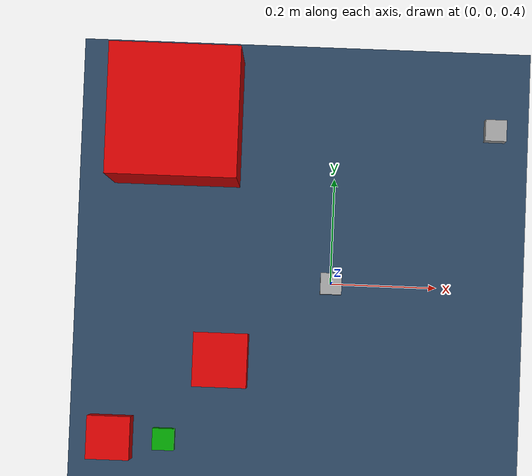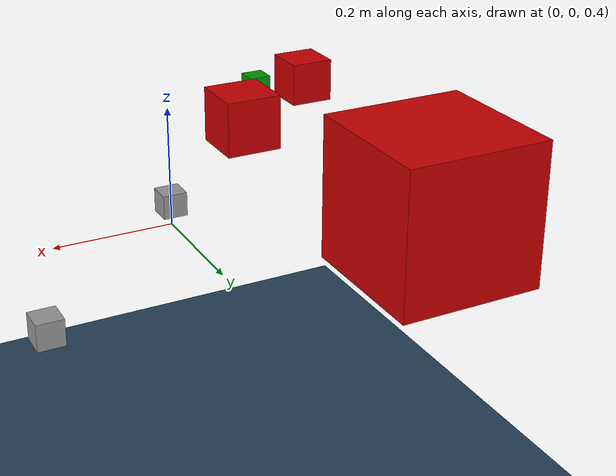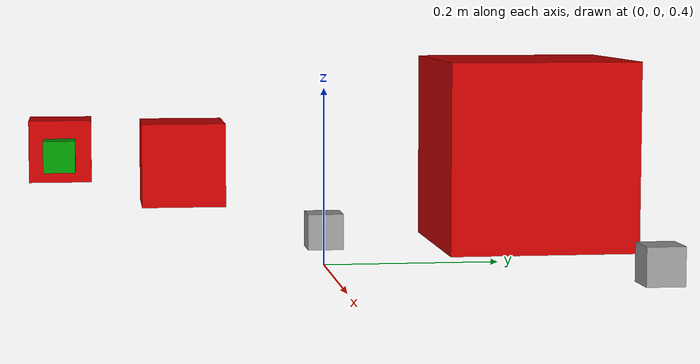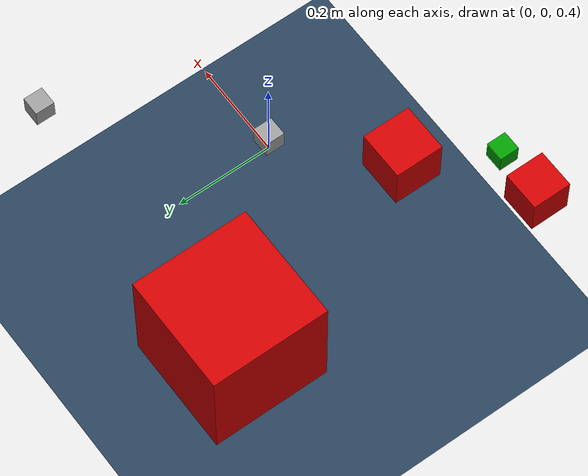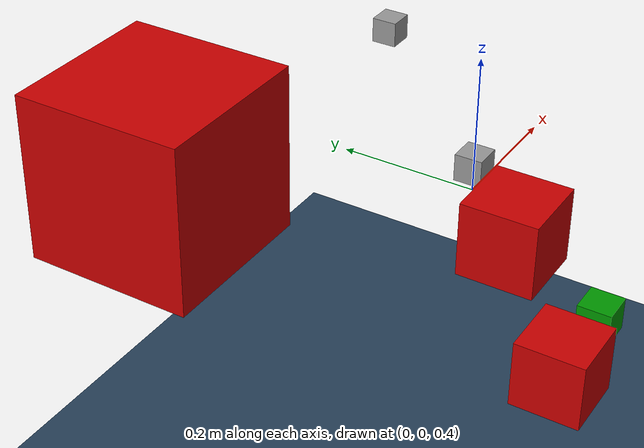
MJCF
<mujoco model="scene_without_robot">

  <statistic center="0.3 0 0.4" extent="0.8"/>

  <visual>
    <headlight diffuse="0.6 0.6 0.6" ambient="0.1 0.1 0.1" specular="0 0 0"/>
    <rgba haze="0.15 0.25 0.35 1"/>
    <global azimuth="120" elevation="-20"/>
  </visual>

  <asset>
    <texture type="skybox" builtin="gradient" rgb1="0.3 0.5 0.7" rgb2="0 0 0" width="512" height="3072"/>
    <texture type="2d" name="groundplane" builtin="checker" mark="edge" rgb1="0.2 0.3 0.4" rgb2="0.1 0.2 0.3"
      markrgb="0.8 0.8 0.8" width="300" height="300"/>
    <material name="groundplane" texture="groundplane" texuniform="true" texrepeat="5 5" reflectance="0.2"/>
  </asset>

  <worldbody>
    <light pos="0 0 1.5" dir="0 0 -1" directional="true"/>
    <geom name="floor" size="0 0 0.05" type="plane" material="groundplane"/>
    <include file="objects.xml" />
    <camera name="camera1" pos="0 0 4" xyaxes="1 0 0 0 1 0"/>
  </worldbody>

</mujoco>

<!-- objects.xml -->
<mujoco>

<!-- quat = [w, x, y, z] -->
<!-- For example, quat = [0.7071, 0.7071, 0, 0] represents a rotation of 90 degrees about the x-axis. End-effector should reach object from a side -->
<!-- For example, quat = [0.0, 1.0, 0, 0] represents a rotation of 90 degrees about the x-axis. End-effector should reach object from top -->
    <body name="target_0" pos="-0.3 -0.3 0.5" quat="0.0 1.0 0.0 0.0">
        <geom name="target_0" pos="0 0 0" rgba="0 0.6 0 1" size="0.02 0.02 0.02" type="box"/>
    </body>

    <body name="target_1" pos="0.3 0.3 0.44" quat="0.7071 0.7071 0.0 0.0">
        <geom name="target_1" pos="0 0 0" rgba="0.6 0.6 0.6 1" size="0.02 0.02 0.02" type="box" />
    </body>

    <body name="target_2" pos="0.0 0.0 0.44" quat="0.0 1.0 0.0 0.0">
        <geom name="target_2" pos="0 0 0" rgba="0.6 0.6 0.6 1" size="0.02 0.02 0.02" type="box" />
    </body>

    <body name="obstacle_0" pos="-0.2 -0.15 0.5" quat="0.70711 0 0.70711 0">
        <geom name="obstacle_0" pos="0 0 0" rgba="0.8 0 0 0" size="0.05 0.05 0.05" type="box"  />
        <site name="obstacle_0" pos="0 0 0" rgba="0.8 0 0 1" size="0.05 0.05 0.05" type="box" />
    </body>
    <body name="obstacle_1" pos="-0.3 0.3 0.5" quat="0.70711 0 0.70711 0">
        <geom name="obstacle_1" pos="0 0 0" rgba="0.8 0 0 0" size="0.12 0.12 0.12" type="box"  />
        <site name="obstacle_1" pos="0 0 0" rgba="0.8 0 0 1" size="0.12 0.12 0.12" type="box" />
    </body>
    <body name="obstacle_2" pos="-0.4 -0.3 0.5" quat="0.70711 0 0.70711 0">
        <geom name="obstacle_2" pos="0 0 0" rgba="0.8 0 0 0" size="0.04 0.04 0.04" type="box"  />
        <site name="obstacle_2" pos="0 0 0" rgba="0.8 0 0 1" size="0.04 0.04 0.04" type="box" />
    </body>

</mujoco>
